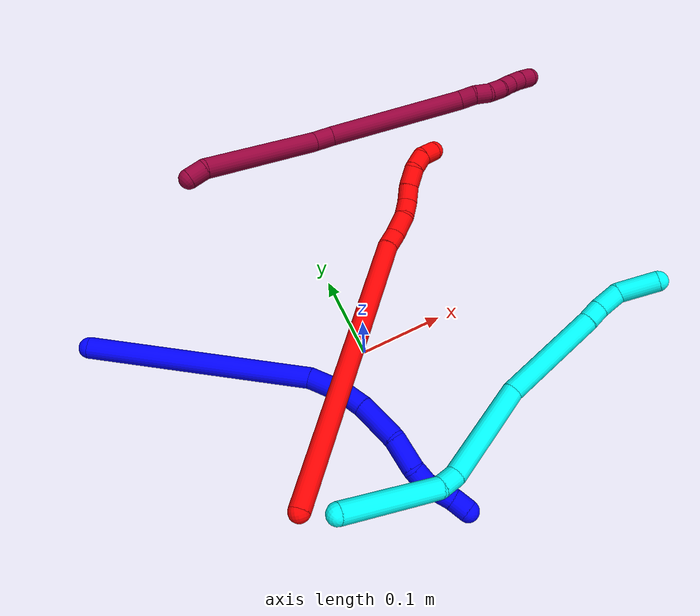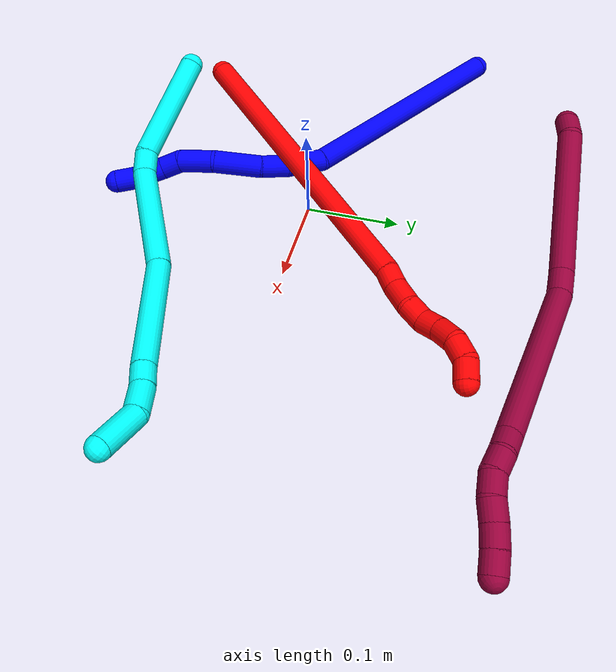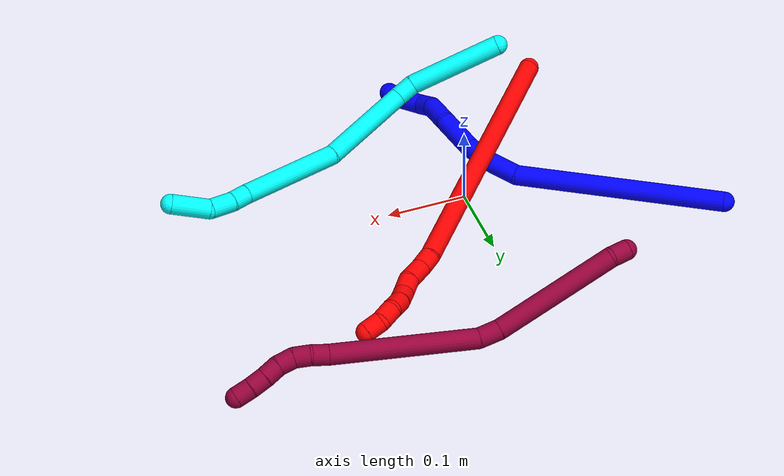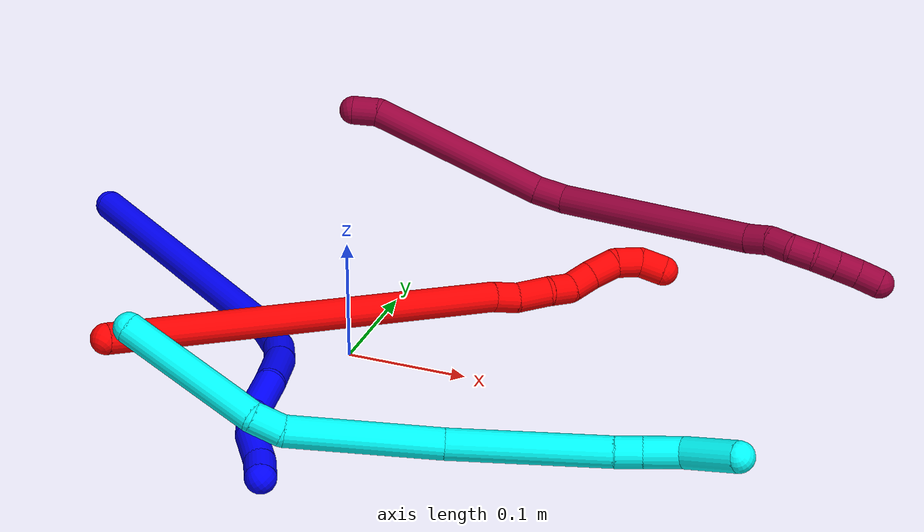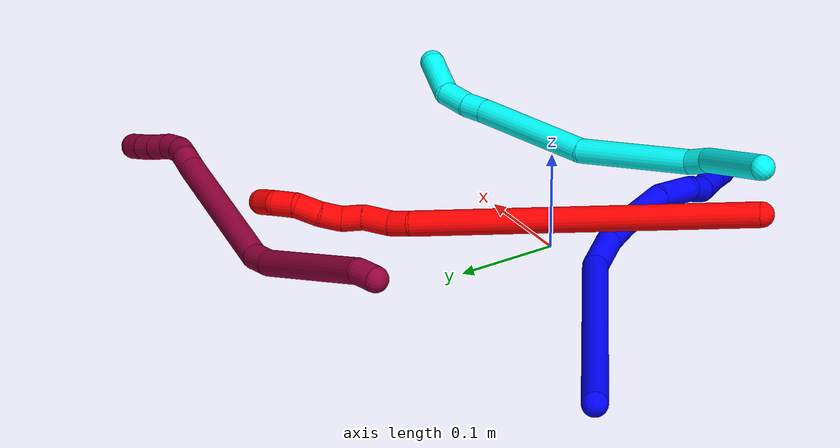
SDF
<sdf version="1.7">
 <world name="default">
  <model name="1">
   <static>0</static>
   <link name="1">
    <collision name="collision-cylinder-e_1_1_4">
     <pose>0.095829 -0.07199 -0.051151 2.18855 0.8262 1.40799</pose>
     <geometry><cylinder><radius>0.0125</radius><length>0.26063</length></cylinder></geometry>
     <surface>
      <friction><ode><mu>1.16</mu><mu2>1.16</mu2><slip1>0</slip1><slip2>0</slip2></ode></friction>
      <contact><ode><kp>1e+06</kp><kd>1</kd><max_vel>0</max_vel><min_depth>0.001</min_depth></ode></contact>
     </surface>
    </collision>
    <visual name="visual-cylinder-e_1_1_4">
     <pose>0.095829 -0.07199 -0.051151 2.18855 0.8262 1.40799</pose>
     <geometry><cylinder><radius>0.0125</radius><length>0.26063</length></cylinder></geometry>
     <material><ambient>0 0 1 1</ambient></material>
    </visual>
    <collision name="collision-cylinder-e_2_4_5">
     <pose>0.205826 -0.159693 -0.104485 1.70891 0.72897 0.826054</pose>
     <geometry><cylinder><radius>0.0125</radius><length>0.042541</length></cylinder></geometry>
     <surface>
      <friction><ode><mu>1.16</mu><mu2>1.16</mu2><slip1>0</slip1><slip2>0</slip2></ode></friction>
      <contact><ode><kp>1e+06</kp><kd>1</kd><max_vel>0</max_vel><min_depth>0.001</min_depth></ode></contact>
     </surface>
    </collision>
    <visual name="visual-cylinder-e_2_4_5">
     <pose>0.205826 -0.159693 -0.104485 1.70891 0.72897 0.826054</pose>
     <geometry><cylinder><radius>0.0125</radius><length>0.042541</length></cylinder></geometry>
     <material><ambient>0 0 1 1</ambient></material>
    </visual>
    <collision name="collision-cylinder-e_3_5_6">
     <pose>0.228117 -0.188164 -0.106372 1.54743 0.566825 0.554399</pose>
     <geometry><cylinder><radius>0.0125</radius><length>0.030253</length></cylinder></geometry>
     <surface>
      <friction><ode><mu>1.16</mu><mu2>1.16</mu2><slip1>0</slip1><slip2>0</slip2></ode></friction>
      <contact><ode><kp>1e+06</kp><kd>1</kd><max_vel>0</max_vel><min_depth>0.001</min_depth></ode></contact>
     </surface>
    </collision>
    <visual name="visual-cylinder-e_3_5_6">
     <pose>0.228117 -0.188164 -0.106372 1.54743 0.566825 0.554399</pose>
     <geometry><cylinder><radius>0.0125</radius><length>0.030253</length></cylinder></geometry>
     <material><ambient>0 0 1 1</ambient></material>
    </visual>
    <collision name="collision-cylinder-e_4_6_7">
     <pose>0.247284 -0.224417 -0.102277 1.41062 0.434493 0.371528</pose>
     <geometry><cylinder><radius>0.0125</radius><length>0.052475</length></cylinder></geometry>
     <surface>
      <friction><ode><mu>1.16</mu><mu2>1.16</mu2><slip1>0</slip1><slip2>0</slip2></ode></friction>
      <contact><ode><kp>1e+06</kp><kd>1</kd><max_vel>0</max_vel><min_depth>0.001</min_depth></ode></contact>
     </surface>
    </collision>
    <visual name="visual-cylinder-e_4_6_7">
     <pose>0.247284 -0.224417 -0.102277 1.41062 0.434493 0.371528</pose>
     <geometry><cylinder><radius>0.0125</radius><length>0.052475</length></cylinder></geometry>
     <material><ambient>0 0 1 1</ambient></material>
    </visual>
    <collision name="collision-cylinder-e_5_7_8">
     <pose>0.260987 -0.266748 -0.098061 1.54847 0.140158 0.137073</pose>
     <geometry><cylinder><radius>0.0125</radius><length>0.038056</length></cylinder></geometry>
     <surface>
      <friction><ode><mu>1.16</mu><mu2>1.16</mu2><slip1>0</slip1><slip2>0</slip2></ode></friction>
      <contact><ode><kp>1e+06</kp><kd>1</kd><max_vel>0</max_vel><min_depth>0.001</min_depth></ode></contact>
     </surface>
    </collision>
    <visual name="visual-cylinder-e_5_7_8">
     <pose>0.260987 -0.266748 -0.098061 1.54847 0.140158 0.137073</pose>
     <geometry><cylinder><radius>0.0125</radius><length>0.038056</length></cylinder></geometry>
     <material><ambient>0 0 1 1</ambient></material>
    </visual>
    <collision name="collision-cylinder-e_6_8_9">
     <pose>0.264899 -0.296117 -0.101452 1.91801 0.111552 0.158828</pose>
     <geometry><cylinder><radius>0.0125</radius><length>0.022541</length></cylinder></geometry>
     <surface>
      <friction><ode><mu>1.16</mu><mu2>1.16</mu2><slip1>0</slip1><slip2>0</slip2></ode></friction>
      <contact><ode><kp>1e+06</kp><kd>1</kd><max_vel>0</max_vel><min_depth>0.001</min_depth></ode></contact>
     </surface>
    </collision>
    <visual name="visual-cylinder-e_6_8_9">
     <pose>0.264899 -0.296117 -0.101452 1.91801 0.111552 0.158828</pose>
     <geometry><cylinder><radius>0.0125</radius><length>0.022541</length></cylinder></geometry>
     <material><ambient>0 0 1 1</ambient></material>
    </visual>
    <collision name="collision-cylinder-e_7_9_10">
     <pose>0.27428 -0.319984 -0.110182 1.92418 0.519395 0.7284</pose>
     <geometry><cylinder><radius>0.0125</radius><length>0.032744</length></cylinder></geometry>
     <surface>
      <friction><ode><mu>1.16</mu><mu2>1.16</mu2><slip1>0</slip1><slip2>0</slip2></ode></friction>
      <contact><ode><kp>1e+06</kp><kd>1</kd><max_vel>0</max_vel><min_depth>0.001</min_depth></ode></contact>
     </surface>
    </collision>
    <visual name="visual-cylinder-e_7_9_10">
     <pose>0.27428 -0.319984 -0.110182 1.92418 0.519395 0.7284</pose>
     <geometry><cylinder><radius>0.0125</radius><length>0.032744</length></cylinder></geometry>
     <material><ambient>0 0 1 1</ambient></material>
    </visual>
    <collision name="collision-cylinder-e_8_10_2">
     <pose>0.286867 -0.342562 -0.116648 1.73674 0.44416 0.521395</pose>
     <geometry><cylinder><radius>0.0125</radius><length>0.020759</length></cylinder></geometry>
     <surface>
      <friction><ode><mu>1.16</mu><mu2>1.16</mu2><slip1>0</slip1><slip2>0</slip2></ode></friction>
      <contact><ode><kp>1e+06</kp><kd>1</kd><max_vel>0</max_vel><min_depth>0.001</min_depth></ode></contact>
     </surface>
    </collision>
    <visual name="visual-cylinder-e_8_10_2">
     <pose>0.286867 -0.342562 -0.116648 1.73674 0.44416 0.521395</pose>
     <geometry><cylinder><radius>0.0125</radius><length>0.020759</length></cylinder></geometry>
     <material><ambient>0 0 1 1</ambient></material>
    </visual>
    <collision name="collision-sphere-2">
     <pose>0.291327 -0.351806 -0.118197 0 -0 0</pose>
     <geometry><sphere><radius>0.0125</radius></sphere></geometry>
     <surface>
      <friction><ode><mu>1.16</mu><mu2>1.16</mu2><slip1>0</slip1><slip2>0</slip2></ode></friction>
      <contact><ode><kp>1e+06</kp><kd>1</kd><max_vel>0</max_vel><min_depth>0.001</min_depth></ode></contact>
     </surface>
    </collision>
    <visual name="visual-sphere-2">
     <pose>0.291327 -0.351806 -0.118197 0 -0 0</pose>
     <geometry><sphere><radius>0.0125</radius></sphere></geometry>
     <material><ambient>0 0 1 1</ambient></material>
    </visual>
    <collision name="collision-sphere-10">
     <pose>0.282407 -0.333319 -0.1151 0 -0 0</pose>
     <geometry><sphere><radius>0.0125</radius></sphere></geometry>
     <surface>
      <friction><ode><mu>1.16</mu><mu2>1.16</mu2><slip1>0</slip1><slip2>0</slip2></ode></friction>
      <contact><ode><kp>1e+06</kp><kd>1</kd><max_vel>0</max_vel><min_depth>0.001</min_depth></ode></contact>
     </surface>
    </collision>
    <visual name="visual-sphere-10">
     <pose>0.282407 -0.333319 -0.1151 0 -0 0</pose>
     <geometry><sphere><radius>0.0125</radius></sphere></geometry>
     <material><ambient>0 0 1 1</ambient></material>
    </visual>
    <collision name="collision-sphere-9">
     <pose>0.266154 -0.306649 -0.105263 0 -0 0</pose>
     <geometry><sphere><radius>0.0125</radius></sphere></geometry>
     <surface>
      <friction><ode><mu>1.16</mu><mu2>1.16</mu2><slip1>0</slip1><slip2>0</slip2></ode></friction>
      <contact><ode><kp>1e+06</kp><kd>1</kd><max_vel>0</max_vel><min_depth>0.001</min_depth></ode></contact>
     </surface>
    </collision>
    <visual name="visual-sphere-9">
     <pose>0.266154 -0.306649 -0.105263 0 -0 0</pose>
     <geometry><sphere><radius>0.0125</radius></sphere></geometry>
     <material><ambient>0 0 1 1</ambient></material>
    </visual>
    <collision name="collision-sphere-4">
     <pose>0.191658 -0.143979 -0.102301 0 -0 0</pose>
     <geometry><sphere><radius>0.0125</radius></sphere></geometry>
     <surface>
      <friction><ode><mu>1.16</mu><mu2>1.16</mu2><slip1>0</slip1><slip2>0</slip2></ode></friction>
      <contact><ode><kp>1e+06</kp><kd>1</kd><max_vel>0</max_vel><min_depth>0.001</min_depth></ode></contact>
     </surface>
    </collision>
    <visual name="visual-sphere-4">
     <pose>0.191658 -0.143979 -0.102301 0 -0 0</pose>
     <geometry><sphere><radius>0.0125</radius></sphere></geometry>
     <material><ambient>0 0 1 1</ambient></material>
    </visual>
    <collision name="collision-sphere-1">
     <geometry><sphere><radius>0.0125</radius></sphere></geometry>
     <surface>
      <friction><ode><mu>1.16</mu><mu2>1.16</mu2><slip1>0</slip1><slip2>0</slip2></ode></friction>
      <contact><ode><kp>1e+06</kp><kd>1</kd><max_vel>0</max_vel><min_depth>0.001</min_depth></ode></contact>
     </surface>
    </collision>
    <visual name="visual-sphere-1">
     <geometry><sphere><radius>0.0125</radius></sphere></geometry>
     <material><ambient>0 0 1 1</ambient></material>
    </visual>
    <collision name="collision-sphere-8">
     <pose>0.263645 -0.285585 -0.09764 0 -0 0</pose>
     <geometry><sphere><radius>0.0125</radius></sphere></geometry>
     <surface>
      <friction><ode><mu>1.16</mu><mu2>1.16</mu2><slip1>0</slip1><slip2>0</slip2></ode></friction>
      <contact><ode><kp>1e+06</kp><kd>1</kd><max_vel>0</max_vel><min_depth>0.001</min_depth></ode></contact>
     </surface>
    </collision>
    <visual name="visual-sphere-8">
     <pose>0.263645 -0.285585 -0.09764 0 -0 0</pose>
     <geometry><sphere><radius>0.0125</radius></sphere></geometry>
     <material><ambient>0 0 1 1</ambient></material>
    </visual>
    <collision name="collision-sphere-5">
     <pose>0.219994 -0.175407 -0.10667 0 -0 0</pose>
     <geometry><sphere><radius>0.0125</radius></sphere></geometry>
     <surface>
      <friction><ode><mu>1.16</mu><mu2>1.16</mu2><slip1>0</slip1><slip2>0</slip2></ode></friction>
      <contact><ode><kp>1e+06</kp><kd>1</kd><max_vel>0</max_vel><min_depth>0.001</min_depth></ode></contact>
     </surface>
    </collision>
    <visual name="visual-sphere-5">
     <pose>0.219994 -0.175407 -0.10667 0 -0 0</pose>
     <geometry><sphere><radius>0.0125</radius></sphere></geometry>
     <material><ambient>0 0 1 1</ambient></material>
    </visual>
    <collision name="collision-sphere-6">
     <pose>0.236239 -0.200922 -0.106073 0 -0 0</pose>
     <geometry><sphere><radius>0.0125</radius></sphere></geometry>
     <surface>
      <friction><ode><mu>1.16</mu><mu2>1.16</mu2><slip1>0</slip1><slip2>0</slip2></ode></friction>
      <contact><ode><kp>1e+06</kp><kd>1</kd><max_vel>0</max_vel><min_depth>0.001</min_depth></ode></contact>
     </surface>
    </collision>
    <visual name="visual-sphere-6">
     <pose>0.236239 -0.200922 -0.106073 0 -0 0</pose>
     <geometry><sphere><radius>0.0125</radius></sphere></geometry>
     <material><ambient>0 0 1 1</ambient></material>
    </visual>
    <collision name="collision-sphere-7">
     <pose>0.258328 -0.247912 -0.098482 0 -0 0</pose>
     <geometry><sphere><radius>0.0125</radius></sphere></geometry>
     <surface>
      <friction><ode><mu>1.16</mu><mu2>1.16</mu2><slip1>0</slip1><slip2>0</slip2></ode></friction>
      <contact><ode><kp>1e+06</kp><kd>1</kd><max_vel>0</max_vel><min_depth>0.001</min_depth></ode></contact>
     </surface>
    </collision>
    <visual name="visual-sphere-7">
     <pose>0.258328 -0.247912 -0.098482 0 -0 0</pose>
     <geometry><sphere><radius>0.0125</radius></sphere></geometry>
     <material><ambient>0 0 1 1</ambient></material>
    </visual>
    <inertial>
     <pose>0.168898 -0.15488 -0.076819 0 -0 0</pose>
     <mass>0.5</mass>
     <inertia>
      <ixx>0.001224</ixx>
      <ixy>0</ixy>
      <ixz>0</ixz>
      <iyy>0.001728</iyy>
      <iyz>0</iyz>
      <izz>-0.000264</izz>
     </inertia>
    </inertial>
   </link>
   <pose>-0.28707 0.142126 0.018553 0.24173 -0.579222 -0.135498</pose>
  </model>
  <model name="2">
   <static>0</static>
   <link name="2">
    <collision name="collision-cylinder-e_1_1_4">
     <pose>0.078939 0.092921 0.11822 -0.666146 0.483425 -0.17017</pose>
     <geometry><cylinder><radius>0.0125</radius><length>0.339656</length></cylinder></geometry>
     <surface>
      <friction><ode><mu>1.16</mu><mu2>1.16</mu2><slip1>0</slip1><slip2>0</slip2></ode></friction>
      <contact><ode><kp>1e+06</kp><kd>1</kd><max_vel>0</max_vel><min_depth>0.001</min_depth></ode></contact>
     </surface>
    </collision>
    <visual name="visual-cylinder-e_1_1_4">
     <pose>0.078939 0.092921 0.11822 -0.666146 0.483425 -0.17017</pose>
     <geometry><cylinder><radius>0.0125</radius><length>0.339656</length></cylinder></geometry>
     <material><ambient>1 0 0 1</ambient></material>
    </visual>
    <collision name="collision-cylinder-e_2_4_5">
     <pose>0.164355 0.191728 0.242339 -0.784295 0.660799 -0.281804</pose>
     <geometry><cylinder><radius>0.0125</radius><length>0.021109</length></cylinder></geometry>
     <surface>
      <friction><ode><mu>1.16</mu><mu2>1.16</mu2><slip1>0</slip1><slip2>0</slip2></ode></friction>
      <contact><ode><kp>1e+06</kp><kd>1</kd><max_vel>0</max_vel><min_depth>0.001</min_depth></ode></contact>
     </surface>
    </collision>
    <visual name="visual-cylinder-e_2_4_5">
     <pose>0.164355 0.191728 0.242339 -0.784295 0.660799 -0.281804</pose>
     <geometry><cylinder><radius>0.0125</radius><length>0.021109</length></cylinder></geometry>
     <material><ambient>1 0 0 1</ambient></material>
    </visual>
    <collision name="collision-cylinder-e_3_5_6">
     <pose>0.179319 0.202529 0.258143 -0.460614 0.654575 -0.158867</pose>
     <geometry><cylinder><radius>0.0125</radius><length>0.027879</length></cylinder></geometry>
     <surface>
      <friction><ode><mu>1.16</mu><mu2>1.16</mu2><slip1>0</slip1><slip2>0</slip2></ode></friction>
      <contact><ode><kp>1e+06</kp><kd>1</kd><max_vel>0</max_vel><min_depth>0.001</min_depth></ode></contact>
     </surface>
    </collision>
    <visual name="visual-cylinder-e_3_5_6">
     <pose>0.179319 0.202529 0.258143 -0.460614 0.654575 -0.158867</pose>
     <geometry><cylinder><radius>0.0125</radius><length>0.027879</length></cylinder></geometry>
     <material><ambient>1 0 0 1</ambient></material>
    </visual>
    <collision name="collision-cylinder-e_4_6_7">
     <pose>0.192032 0.213576 0.275854 -0.665861 0.402486 -0.140857</pose>
     <geometry><cylinder><radius>0.0125</radius><length>0.021576</length></cylinder></geometry>
     <surface>
      <friction><ode><mu>1.16</mu><mu2>1.16</mu2><slip1>0</slip1><slip2>0</slip2></ode></friction>
      <contact><ode><kp>1e+06</kp><kd>1</kd><max_vel>0</max_vel><min_depth>0.001</min_depth></ode></contact>
     </surface>
    </collision>
    <visual name="visual-cylinder-e_4_6_7">
     <pose>0.192032 0.213576 0.275854 -0.665861 0.402486 -0.140857</pose>
     <geometry><cylinder><radius>0.0125</radius><length>0.021576</length></cylinder></geometry>
     <material><ambient>1 0 0 1</ambient></material>
    </visual>
    <collision name="collision-cylinder-e_5_7_8">
     <pose>0.199856 0.222271 0.293681 -0.250443 0.334862 -0.042544</pose>
     <geometry><cylinder><radius>0.0125</radius><length>0.021903</length></cylinder></geometry>
     <surface>
      <friction><ode><mu>1.16</mu><mu2>1.16</mu2><slip1>0</slip1><slip2>0</slip2></ode></friction>
      <contact><ode><kp>1e+06</kp><kd>1</kd><max_vel>0</max_vel><min_depth>0.001</min_depth></ode></contact>
     </surface>
    </collision>
    <visual name="visual-cylinder-e_5_7_8">
     <pose>0.199856 0.222271 0.293681 -0.250443 0.334862 -0.042544</pose>
     <geometry><cylinder><radius>0.0125</radius><length>0.021903</length></cylinder></geometry>
     <material><ambient>1 0 0 1</ambient></material>
    </visual>
    <collision name="collision-cylinder-e_6_8_9">
     <pose>0.209575 0.226808 0.313957 -0.190143 0.530007 -0.051747</pose>
     <geometry><cylinder><radius>0.0125</radius><length>0.02421</length></cylinder></geometry>
     <surface>
      <friction><ode><mu>1.16</mu><mu2>1.16</mu2><slip1>0</slip1><slip2>0</slip2></ode></friction>
      <contact><ode><kp>1e+06</kp><kd>1</kd><max_vel>0</max_vel><min_depth>0.001</min_depth></ode></contact>
     </surface>
    </collision>
    <visual name="visual-cylinder-e_6_8_9">
     <pose>0.209575 0.226808 0.313957 -0.190143 0.530007 -0.051747</pose>
     <geometry><cylinder><radius>0.0125</radius><length>0.02421</length></cylinder></geometry>
     <material><ambient>1 0 0 1</ambient></material>
    </visual>
    <collision name="collision-cylinder-e_7_9_10">
     <pose>0.222758 0.234042 0.331027 -0.657401 0.687169 -0.242854</pose>
     <geometry><cylinder><radius>0.0125</radius><length>0.022269</length></cylinder></geometry>
     <surface>
      <friction><ode><mu>1.16</mu><mu2>1.16</mu2><slip1>0</slip1><slip2>0</slip2></ode></friction>
      <contact><ode><kp>1e+06</kp><kd>1</kd><max_vel>0</max_vel><min_depth>0.001</min_depth></ode></contact>
     </surface>
    </collision>
    <visual name="visual-cylinder-e_7_9_10">
     <pose>0.222758 0.234042 0.331027 -0.657401 0.687169 -0.242854</pose>
     <geometry><cylinder><radius>0.0125</radius><length>0.022269</length></cylinder></geometry>
     <material><ambient>1 0 0 1</ambient></material>
    </visual>
    <collision name="collision-cylinder-e_8_10_2">
     <pose>0.238715 0.244888 0.339879 -1.22086 0.981373 -0.715355</pose>
     <geometry><cylinder><radius>0.0125</radius><length>0.021398</length></cylinder></geometry>
     <surface>
      <friction><ode><mu>1.16</mu><mu2>1.16</mu2><slip1>0</slip1><slip2>0</slip2></ode></friction>
      <contact><ode><kp>1e+06</kp><kd>1</kd><max_vel>0</max_vel><min_depth>0.001</min_depth></ode></contact>
     </surface>
    </collision>
    <visual name="visual-cylinder-e_8_10_2">
     <pose>0.238715 0.244888 0.339879 -1.22086 0.981373 -0.715355</pose>
     <geometry><cylinder><radius>0.0125</radius><length>0.021398</length></cylinder></geometry>
     <material><ambient>1 0 0 1</ambient></material>
    </visual>
    <collision name="collision-sphere-2">
     <pose>0.247608 0.250475 0.341918 0 -0 0</pose>
     <geometry><sphere><radius>0.0125</radius></sphere></geometry>
     <surface>
      <friction><ode><mu>1.16</mu><mu2>1.16</mu2><slip1>0</slip1><slip2>0</slip2></ode></friction>
      <contact><ode><kp>1e+06</kp><kd>1</kd><max_vel>0</max_vel><min_depth>0.001</min_depth></ode></contact>
     </surface>
    </collision>
    <visual name="visual-sphere-2">
     <pose>0.247608 0.250475 0.341918 0 -0 0</pose>
     <geometry><sphere><radius>0.0125</radius></sphere></geometry>
     <material><ambient>1 0 0 1</ambient></material>
    </visual>
    <collision name="collision-sphere-10">
     <pose>0.229821 0.239301 0.33784 0 -0 0</pose>
     <geometry><sphere><radius>0.0125</radius></sphere></geometry>
     <surface>
      <friction><ode><mu>1.16</mu><mu2>1.16</mu2><slip1>0</slip1><slip2>0</slip2></ode></friction>
      <contact><ode><kp>1e+06</kp><kd>1</kd><max_vel>0</max_vel><min_depth>0.001</min_depth></ode></contact>
     </surface>
    </collision>
    <visual name="visual-sphere-10">
     <pose>0.229821 0.239301 0.33784 0 -0 0</pose>
     <geometry><sphere><radius>0.0125</radius></sphere></geometry>
     <material><ambient>1 0 0 1</ambient></material>
    </visual>
    <collision name="collision-sphere-9">
     <pose>0.215695 0.228782 0.324213 0 -0 0</pose>
     <geometry><sphere><radius>0.0125</radius></sphere></geometry>
     <surface>
      <friction><ode><mu>1.16</mu><mu2>1.16</mu2><slip1>0</slip1><slip2>0</slip2></ode></friction>
      <contact><ode><kp>1e+06</kp><kd>1</kd><max_vel>0</max_vel><min_depth>0.001</min_depth></ode></contact>
     </surface>
    </collision>
    <visual name="visual-sphere-9">
     <pose>0.215695 0.228782 0.324213 0 -0 0</pose>
     <geometry><sphere><radius>0.0125</radius></sphere></geometry>
     <material><ambient>1 0 0 1</ambient></material>
    </visual>
    <collision name="collision-sphere-4">
     <pose>0.157877 0.185842 0.23644 0 -0 0</pose>
     <geometry><sphere><radius>0.0125</radius></sphere></geometry>
     <surface>
      <friction><ode><mu>1.16</mu><mu2>1.16</mu2><slip1>0</slip1><slip2>0</slip2></ode></friction>
      <contact><ode><kp>1e+06</kp><kd>1</kd><max_vel>0</max_vel><min_depth>0.001</min_depth></ode></contact>
     </surface>
    </collision>
    <visual name="visual-sphere-4">
     <pose>0.157877 0.185842 0.23644 0 -0 0</pose>
     <geometry><sphere><radius>0.0125</radius></sphere></geometry>
     <material><ambient>1 0 0 1</ambient></material>
    </visual>
    <collision name="collision-sphere-1">
     <geometry><sphere><radius>0.0125</radius></sphere></geometry>
     <surface>
      <friction><ode><mu>1.16</mu><mu2>1.16</mu2><slip1>0</slip1><slip2>0</slip2></ode></friction>
      <contact><ode><kp>1e+06</kp><kd>1</kd><max_vel>0</max_vel><min_depth>0.001</min_depth></ode></contact>
     </surface>
    </collision>
    <visual name="visual-sphere-1">
     <geometry><sphere><radius>0.0125</radius></sphere></geometry>
     <material><ambient>1 0 0 1</ambient></material>
    </visual>
    <collision name="collision-sphere-8">
     <pose>0.203456 0.224834 0.303702 0 -0 0</pose>
     <geometry><sphere><radius>0.0125</radius></sphere></geometry>
     <surface>
      <friction><ode><mu>1.16</mu><mu2>1.16</mu2><slip1>0</slip1><slip2>0</slip2></ode></friction>
      <contact><ode><kp>1e+06</kp><kd>1</kd><max_vel>0</max_vel><min_depth>0.001</min_depth></ode></contact>
     </surface>
    </collision>
    <visual name="visual-sphere-8">
     <pose>0.203456 0.224834 0.303702 0 -0 0</pose>
     <geometry><sphere><radius>0.0125</radius></sphere></geometry>
     <material><ambient>1 0 0 1</ambient></material>
    </visual>
    <collision name="collision-sphere-5">
     <pose>0.170833 0.197613 0.248237 0 -0 0</pose>
     <geometry><sphere><radius>0.0125</radius></sphere></geometry>
     <surface>
      <friction><ode><mu>1.16</mu><mu2>1.16</mu2><slip1>0</slip1><slip2>0</slip2></ode></friction>
      <contact><ode><kp>1e+06</kp><kd>1</kd><max_vel>0</max_vel><min_depth>0.001</min_depth></ode></contact>
     </surface>
    </collision>
    <visual name="visual-sphere-5">
     <pose>0.170833 0.197613 0.248237 0 -0 0</pose>
     <geometry><sphere><radius>0.0125</radius></sphere></geometry>
     <material><ambient>1 0 0 1</ambient></material>
    </visual>
    <collision name="collision-sphere-6">
     <pose>0.187806 0.207444 0.268049 0 -0 0</pose>
     <geometry><sphere><radius>0.0125</radius></sphere></geometry>
     <surface>
      <friction><ode><mu>1.16</mu><mu2>1.16</mu2><slip1>0</slip1><slip2>0</slip2></ode></friction>
      <contact><ode><kp>1e+06</kp><kd>1</kd><max_vel>0</max_vel><min_depth>0.001</min_depth></ode></contact>
     </surface>
    </collision>
    <visual name="visual-sphere-6">
     <pose>0.187806 0.207444 0.268049 0 -0 0</pose>
     <geometry><sphere><radius>0.0125</radius></sphere></geometry>
     <material><ambient>1 0 0 1</ambient></material>
    </visual>
    <collision name="collision-sphere-7">
     <pose>0.196257 0.219707 0.28366 0 -0 0</pose>
     <geometry><sphere><radius>0.0125</radius></sphere></geometry>
     <surface>
      <friction><ode><mu>1.16</mu><mu2>1.16</mu2><slip1>0</slip1><slip2>0</slip2></ode></friction>
      <contact><ode><kp>1e+06</kp><kd>1</kd><max_vel>0</max_vel><min_depth>0.001</min_depth></ode></contact>
     </surface>
    </collision>
    <visual name="visual-sphere-7">
     <pose>0.196257 0.219707 0.28366 0 -0 0</pose>
     <geometry><sphere><radius>0.0125</radius></sphere></geometry>
     <material><ambient>1 0 0 1</ambient></material>
    </visual>
    <inertial>
     <pose>0.117887 0.133348 0.174192 0 -0 0</pose>
     <mass>0.5</mass>
     <inertia>
      <ixx>0.002397</ixx>
      <ixy>0</ixy>
      <ixz>0</ixz>
      <iyy>0.002238</iyy>
      <iyz>0</iyz>
      <izz>-0.003304</izz>
     </inertia>
    </inertial>
   </link>
   <pose>-0.142946 -0.143036 0.059851 -1.08836 -0.0739 -0.23954</pose>
  </model>
  <model name="3">
   <static>0</static>
   <link name="3">
    <collision name="collision-cylinder-e_1_1_4">
     <pose>0.054699 -0.021203 -0.011577 2.07056 1.15492 1.66422</pose>
     <geometry><cylinder><radius>0.0125</radius><length>0.119592</length></cylinder></geometry>
     <surface>
      <friction><ode><mu>1.16</mu><mu2>1.16</mu2><slip1>0</slip1><slip2>0</slip2></ode></friction>
      <contact><ode><kp>1e+06</kp><kd>1</kd><max_vel>0</max_vel><min_depth>0.001</min_depth></ode></contact>
     </surface>
    </collision>
    <visual name="visual-cylinder-e_1_1_4">
     <pose>0.054699 -0.021203 -0.011577 2.07056 1.15492 1.66422</pose>
     <geometry><cylinder><radius>0.0125</radius><length>0.119592</length></cylinder></geometry>
     <material><ambient>0.003922 1 0.996078 1</ambient></material>
    </visual>
    <collision name="collision-cylinder-e_2_4_5">
     <pose>0.120354 -0.04411 -0.029008 2.85836 1.06292 2.66574</pose>
     <geometry><cylinder><radius>0.0125</radius><length>0.025077</length></cylinder></geometry>
     <surface>
      <friction><ode><mu>1.16</mu><mu2>1.16</mu2><slip1>0</slip1><slip2>0</slip2></ode></friction>
      <contact><ode><kp>1e+06</kp><kd>1</kd><max_vel>0</max_vel><min_depth>0.001</min_depth></ode></contact>
     </surface>
    </collision>
    <visual name="visual-cylinder-e_2_4_5">
     <pose>0.120354 -0.04411 -0.029008 2.85836 1.06292 2.66574</pose>
     <geometry><cylinder><radius>0.0125</radius><length>0.025077</length></cylinder></geometry>
     <material><ambient>0.003922 1 0.996078 1</ambient></material>
    </visual>
    <collision name="collision-cylinder-e_3_5_6">
     <pose>0.184173 -0.031986 -0.064291 -2.70233 1.01938 -2.38165</pose>
     <geometry><cylinder><radius>0.0125</radius><length>0.124125</length></cylinder></geometry>
     <surface>
      <friction><ode><mu>1.16</mu><mu2>1.16</mu2><slip1>0</slip1><slip2>0</slip2></ode></friction>
      <contact><ode><kp>1e+06</kp><kd>1</kd><max_vel>0</max_vel><min_depth>0.001</min_depth></ode></contact>
     </surface>
    </collision>
    <visual name="visual-cylinder-e_3_5_6">
     <pose>0.184173 -0.031986 -0.064291 -2.70233 1.01938 -2.38165</pose>
     <geometry><cylinder><radius>0.0125</radius><length>0.124125</length></cylinder></geometry>
     <material><ambient>0.003922 1 0.996078 1</ambient></material>
    </visual>
    <collision name="collision-cylinder-e_4_6_7">
     <pose>0.298265 -0.004604 -0.108514 -2.39995 1.2541 -2.15663</pose>
     <geometry><cylinder><radius>0.0125</radius><length>0.128865</length></cylinder></geometry>
     <surface>
      <friction><ode><mu>1.16</mu><mu2>1.16</mu2><slip1>0</slip1><slip2>0</slip2></ode></friction>
      <contact><ode><kp>1e+06</kp><kd>1</kd><max_vel>0</max_vel><min_depth>0.001</min_depth></ode></contact>
     </surface>
    </collision>
    <visual name="visual-cylinder-e_4_6_7">
     <pose>0.298265 -0.004604 -0.108514 -2.39995 1.2541 -2.15663</pose>
     <geometry><cylinder><radius>0.0125</radius><length>0.128865</length></cylinder></geometry>
     <material><ambient>0.003922 1 0.996078 1</ambient></material>
    </visual>
    <collision name="collision-cylinder-e_5_7_8">
     <pose>0.369751 0.011845 -0.126439 -2.39526 1.17692 -2.08046</pose>
     <geometry><cylinder><radius>0.0125</radius><length>0.022215</length></cylinder></geometry>
     <surface>
      <friction><ode><mu>1.16</mu><mu2>1.16</mu2><slip1>0</slip1><slip2>0</slip2></ode></friction>
      <contact><ode><kp>1e+06</kp><kd>1</kd><max_vel>0</max_vel><min_depth>0.001</min_depth></ode></contact>
     </surface>
    </collision>
    <visual name="visual-cylinder-e_5_7_8">
     <pose>0.369751 0.011845 -0.126439 -2.39526 1.17692 -2.08046</pose>
     <geometry><cylinder><radius>0.0125</radius><length>0.022215</length></cylinder></geometry>
     <material><ambient>0.003922 1 0.996078 1</ambient></material>
    </visual>
    <collision name="collision-cylinder-e_6_8_9">
     <pose>0.394953 0.018318 -0.131592 -2.08526 1.30234 -1.83472</pose>
     <geometry><cylinder><radius>0.0125</radius><length>0.031001</length></cylinder></geometry>
     <surface>
      <friction><ode><mu>1.16</mu><mu2>1.16</mu2><slip1>0</slip1><slip2>0</slip2></ode></friction>
      <contact><ode><kp>1e+06</kp><kd>1</kd><max_vel>0</max_vel><min_depth>0.001</min_depth></ode></contact>
     </surface>
    </collision>
    <visual name="visual-cylinder-e_6_8_9">
     <pose>0.394953 0.018318 -0.131592 -2.08526 1.30234 -1.83472</pose>
     <geometry><cylinder><radius>0.0125</radius><length>0.031001</length></cylinder></geometry>
     <material><ambient>0.003922 1 0.996078 1</ambient></material>
    </visual>
    <collision name="collision-cylinder-e_7_9_2">
     <pose>0.433162 0.023027 -0.125813 -0.143835 1.24408 -0.103216</pose>
     <geometry><cylinder><radius>0.0125</radius><length>0.049126</length></cylinder></geometry>
     <surface>
      <friction><ode><mu>1.16</mu><mu2>1.16</mu2><slip1>0</slip1><slip2>0</slip2></ode></friction>
      <contact><ode><kp>1e+06</kp><kd>1</kd><max_vel>0</max_vel><min_depth>0.001</min_depth></ode></contact>
     </surface>
    </collision>
    <visual name="visual-cylinder-e_7_9_2">
     <pose>0.433162 0.023027 -0.125813 -0.143835 1.24408 -0.103216</pose>
     <geometry><cylinder><radius>0.0125</radius><length>0.049126</length></cylinder></geometry>
     <material><ambient>0.003922 1 0.996078 1</ambient></material>
    </visual>
    <collision name="collision-sphere-2">
     <pose>0.456425 0.024157 -0.118012 0 -0 0</pose>
     <geometry><sphere><radius>0.0125</radius></sphere></geometry>
     <surface>
      <friction><ode><mu>1.16</mu><mu2>1.16</mu2><slip1>0</slip1><slip2>0</slip2></ode></friction>
      <contact><ode><kp>1e+06</kp><kd>1</kd><max_vel>0</max_vel><min_depth>0.001</min_depth></ode></contact>
     </surface>
    </collision>
    <visual name="visual-sphere-2">
     <pose>0.456425 0.024157 -0.118012 0 -0 0</pose>
     <geometry><sphere><radius>0.0125</radius></sphere></geometry>
     <material><ambient>0.003922 1 0.996078 1</ambient></material>
    </visual>
    <collision name="collision-sphere-9">
     <pose>0.409898 0.021897 -0.133615 0 -0 0</pose>
     <geometry><sphere><radius>0.0125</radius></sphere></geometry>
     <surface>
      <friction><ode><mu>1.16</mu><mu2>1.16</mu2><slip1>0</slip1><slip2>0</slip2></ode></friction>
      <contact><ode><kp>1e+06</kp><kd>1</kd><max_vel>0</max_vel><min_depth>0.001</min_depth></ode></contact>
     </surface>
    </collision>
    <visual name="visual-sphere-9">
     <pose>0.409898 0.021897 -0.133615 0 -0 0</pose>
     <geometry><sphere><radius>0.0125</radius></sphere></geometry>
     <material><ambient>0.003922 1 0.996078 1</ambient></material>
    </visual>
    <collision name="collision-sphere-4">
     <pose>0.109398 -0.042405 -0.023153 0 -0 0</pose>
     <geometry><sphere><radius>0.0125</radius></sphere></geometry>
     <surface>
      <friction><ode><mu>1.16</mu><mu2>1.16</mu2><slip1>0</slip1><slip2>0</slip2></ode></friction>
      <contact><ode><kp>1e+06</kp><kd>1</kd><max_vel>0</max_vel><min_depth>0.001</min_depth></ode></contact>
     </surface>
    </collision>
    <visual name="visual-sphere-4">
     <pose>0.109398 -0.042405 -0.023153 0 -0 0</pose>
     <geometry><sphere><radius>0.0125</radius></sphere></geometry>
     <material><ambient>0.003922 1 0.996078 1</ambient></material>
    </visual>
    <collision name="collision-sphere-1">
     <geometry><sphere><radius>0.0125</radius></sphere></geometry>
     <surface>
      <friction><ode><mu>1.16</mu><mu2>1.16</mu2><slip1>0</slip1><slip2>0</slip2></ode></friction>
      <contact><ode><kp>1e+06</kp><kd>1</kd><max_vel>0</max_vel><min_depth>0.001</min_depth></ode></contact>
     </surface>
    </collision>
    <visual name="visual-sphere-1">
     <geometry><sphere><radius>0.0125</radius></sphere></geometry>
     <material><ambient>0.003922 1 0.996078 1</ambient></material>
    </visual>
    <collision name="collision-sphere-8">
     <pose>0.380008 0.014739 -0.129569 0 -0 0</pose>
     <geometry><sphere><radius>0.0125</radius></sphere></geometry>
     <surface>
      <friction><ode><mu>1.16</mu><mu2>1.16</mu2><slip1>0</slip1><slip2>0</slip2></ode></friction>
      <contact><ode><kp>1e+06</kp><kd>1</kd><max_vel>0</max_vel><min_depth>0.001</min_depth></ode></contact>
     </surface>
    </collision>
    <visual name="visual-sphere-8">
     <pose>0.380008 0.014739 -0.129569 0 -0 0</pose>
     <geometry><sphere><radius>0.0125</radius></sphere></geometry>
     <material><ambient>0.003922 1 0.996078 1</ambient></material>
    </visual>
    <collision name="collision-sphere-5">
     <pose>0.13131 -0.045814 -0.034863 0 -0 0</pose>
     <geometry><sphere><radius>0.0125</radius></sphere></geometry>
     <surface>
      <friction><ode><mu>1.16</mu><mu2>1.16</mu2><slip1>0</slip1><slip2>0</slip2></ode></friction>
      <contact><ode><kp>1e+06</kp><kd>1</kd><max_vel>0</max_vel><min_depth>0.001</min_depth></ode></contact>
     </surface>
    </collision>
    <visual name="visual-sphere-5">
     <pose>0.13131 -0.045814 -0.034863 0 -0 0</pose>
     <geometry><sphere><radius>0.0125</radius></sphere></geometry>
     <material><ambient>0.003922 1 0.996078 1</ambient></material>
    </visual>
    <collision name="collision-sphere-6">
     <pose>0.237037 -0.018159 -0.093718 0 -0 0</pose>
     <geometry><sphere><radius>0.0125</radius></sphere></geometry>
     <surface>
      <friction><ode><mu>1.16</mu><mu2>1.16</mu2><slip1>0</slip1><slip2>0</slip2></ode></friction>
      <contact><ode><kp>1e+06</kp><kd>1</kd><max_vel>0</max_vel><min_depth>0.001</min_depth></ode></contact>
     </surface>
    </collision>
    <visual name="visual-sphere-6">
     <pose>0.237037 -0.018159 -0.093718 0 -0 0</pose>
     <geometry><sphere><radius>0.0125</radius></sphere></geometry>
     <material><ambient>0.003922 1 0.996078 1</ambient></material>
    </visual>
    <collision name="collision-sphere-7">
     <pose>0.359494 0.00895 -0.123309 0 -0 0</pose>
     <geometry><sphere><radius>0.0125</radius></sphere></geometry>
     <surface>
      <friction><ode><mu>1.16</mu><mu2>1.16</mu2><slip1>0</slip1><slip2>0</slip2></ode></friction>
      <contact><ode><kp>1e+06</kp><kd>1</kd><max_vel>0</max_vel><min_depth>0.001</min_depth></ode></contact>
     </surface>
    </collision>
    <visual name="visual-sphere-7">
     <pose>0.359494 0.00895 -0.123309 0 -0 0</pose>
     <geometry><sphere><radius>0.0125</radius></sphere></geometry>
     <material><ambient>0.003922 1 0.996078 1</ambient></material>
    </visual>
    <inertial>
     <pose>0.225187 -0.012486 -0.074289 0 -0 0</pose>
     <mass>0.5</mass>
     <inertia>
      <ixx>-0.000111</ixx>
      <ixy>0</ixy>
      <ixz>0</ixz>
      <iyy>0.000418</iyy>
      <iyz>0</iyz>
      <izz>-0.000501</izz>
     </inertia>
    </inertial>
   </link>
   <pose>-0.109434 -0.16703 0.088107 0.808136 -0.007237 -0.041893</pose>
  </model>
  <model name="8">
   <static>0</static>
   <link name="8">
    <collision name="collision-cylinder-e_1_1_4">
     <pose>0.001361 0.002505 0.010687 -0.230215 0.123327 -0.014277</pose>
     <geometry><cylinder><radius>0.0125</radius><length>0.022122</length></cylinder></geometry>
     <surface>
      <friction><ode><mu>1.16</mu><mu2>1.16</mu2><slip1>0</slip1><slip2>0</slip2></ode></friction>
      <contact><ode><kp>1e+06</kp><kd>1</kd><max_vel>0</max_vel><min_depth>0.001</min_depth></ode></contact>
     </surface>
    </collision>
    <visual name="visual-cylinder-e_1_1_4">
     <pose>0.001361 0.002505 0.010687 -0.230215 0.123327 -0.014277</pose>
     <geometry><cylinder><radius>0.0125</radius><length>0.022122</length></cylinder></geometry>
     <material><ambient>0.584314 0 0.227451 1</ambient></material>
    </visual>
    <collision name="collision-cylinder-e_2_4_5">
     <pose>0.019151 0.04721 0.084132 -0.591988 0.213931 -0.065465</pose>
     <geometry><cylinder><radius>0.0125</radius><length>0.154781</length></cylinder></geometry>
     <surface>
      <friction><ode><mu>1.16</mu><mu2>1.16</mu2><slip1>0</slip1><slip2>0</slip2></ode></friction>
      <contact><ode><kp>1e+06</kp><kd>1</kd><max_vel>0</max_vel><min_depth>0.001</min_depth></ode></contact>
     </surface>
    </collision>
    <visual name="visual-cylinder-e_2_4_5">
     <pose>0.019151 0.04721 0.084132 -0.591988 0.213931 -0.065465</pose>
     <geometry><cylinder><radius>0.0125</radius><length>0.154781</length></cylinder></geometry>
     <material><ambient>0.584314 0 0.227451 1</ambient></material>
    </visual>
    <collision name="collision-cylinder-e_3_5_6">
     <pose>0.039474 0.094358 0.158399 -0.40598 0.301218 -0.062451</pose>
     <geometry><cylinder><radius>0.0125</radius><length>0.026239</length></cylinder></geometry>
     <surface>
      <friction><ode><mu>1.16</mu><mu2>1.16</mu2><slip1>0</slip1><slip2>0</slip2></ode></friction>
      <contact><ode><kp>1e+06</kp><kd>1</kd><max_vel>0</max_vel><min_depth>0.001</min_depth></ode></contact>
     </surface>
    </collision>
    <visual name="visual-cylinder-e_3_5_6">
     <pose>0.039474 0.094358 0.158399 -0.40598 0.301218 -0.062451</pose>
     <geometry><cylinder><radius>0.0125</radius><length>0.026239</length></cylinder></geometry>
     <material><ambient>0.584314 0 0.227451 1</ambient></material>
    </visual>
    <collision name="collision-cylinder-e_4_6_7">
     <pose>0.086564 0.11372 0.245509 -0.188401 0.511469 -0.049395</pose>
     <geometry><cylinder><radius>0.0125</radius><length>0.176511</length></cylinder></geometry>
     <surface>
      <friction><ode><mu>1.16</mu><mu2>1.16</mu2><slip1>0</slip1><slip2>0</slip2></ode></friction>
      <contact><ode><kp>1e+06</kp><kd>1</kd><max_vel>0</max_vel><min_depth>0.001</min_depth></ode></contact>
     </surface>
    </collision>
    <visual name="visual-cylinder-e_4_6_7">
     <pose>0.086564 0.11372 0.245509 -0.188401 0.511469 -0.049395</pose>
     <geometry><cylinder><radius>0.0125</radius><length>0.176511</length></cylinder></geometry>
     <material><ambient>0.584314 0 0.227451 1</ambient></material>
    </visual>
    <collision name="collision-cylinder-e_5_7_8">
     <pose>0.134608 0.128609 0.32985 -0.054237 0.505607 -0.014014</pose>
     <geometry><cylinder><radius>0.0125</radius><length>0.020012</length></cylinder></geometry>
     <surface>
      <friction><ode><mu>1.16</mu><mu2>1.16</mu2><slip1>0</slip1><slip2>0</slip2></ode></friction>
      <contact><ode><kp>1e+06</kp><kd>1</kd><max_vel>0</max_vel><min_depth>0.001</min_depth></ode></contact>
     </surface>
    </collision>
    <visual name="visual-cylinder-e_5_7_8">
     <pose>0.134608 0.128609 0.32985 -0.054237 0.505607 -0.014014</pose>
     <geometry><cylinder><radius>0.0125</radius><length>0.020012</length></cylinder></geometry>
     <material><ambient>0.584314 0 0.227451 1</ambient></material>
    </visual>
    <collision name="collision-cylinder-e_6_8_9">
     <pose>0.144934 0.131904 0.34656 -0.340253 0.575116 -0.101527</pose>
     <geometry><cylinder><radius>0.0125</radius><length>0.020148</length></cylinder></geometry>
     <surface>
      <friction><ode><mu>1.16</mu><mu2>1.16</mu2><slip1>0</slip1><slip2>0</slip2></ode></friction>
      <contact><ode><kp>1e+06</kp><kd>1</kd><max_vel>0</max_vel><min_depth>0.001</min_depth></ode></contact>
     </surface>
    </collision>
    <visual name="visual-cylinder-e_6_8_9">
     <pose>0.144934 0.131904 0.34656 -0.340253 0.575116 -0.101527</pose>
     <geometry><cylinder><radius>0.0125</radius><length>0.020148</length></cylinder></geometry>
     <material><ambient>0.584314 0 0.227451 1</ambient></material>
    </visual>
    <collision name="collision-cylinder-e_7_9_10">
     <pose>0.152756 0.138975 0.363372 -0.447957 0.234405 -0.053631</pose>
     <geometry><cylinder><radius>0.0125</radius><length>0.020175</length></cylinder></geometry>
     <surface>
      <friction><ode><mu>1.16</mu><mu2>1.16</mu2><slip1>0</slip1><slip2>0</slip2></ode></friction>
      <contact><ode><kp>1e+06</kp><kd>1</kd><max_vel>0</max_vel><min_depth>0.001</min_depth></ode></contact>
     </surface>
    </collision>
    <visual name="visual-cylinder-e_7_9_10">
     <pose>0.152756 0.138975 0.363372 -0.447957 0.234405 -0.053631</pose>
     <geometry><cylinder><radius>0.0125</radius><length>0.020175</length></cylinder></geometry>
     <material><ambient>0.584314 0 0.227451 1</ambient></material>
    </visual>
    <collision name="collision-cylinder-e_8_10_11">
     <pose>0.155253 0.148651 0.380616 -0.573568 0.015425 -0.004549</pose>
     <geometry><cylinder><radius>0.0125</radius><length>0.020004</length></cylinder></geometry>
     <surface>
      <friction><ode><mu>1.16</mu><mu2>1.16</mu2><slip1>0</slip1><slip2>0</slip2></ode></friction>
      <contact><ode><kp>1e+06</kp><kd>1</kd><max_vel>0</max_vel><min_depth>0.001</min_depth></ode></contact>
     </surface>
    </collision>
    <visual name="visual-cylinder-e_8_10_11">
     <pose>0.155253 0.148651 0.380616 -0.573568 0.015425 -0.004549</pose>
     <geometry><cylinder><radius>0.0125</radius><length>0.020004</length></cylinder></geometry>
     <material><ambient>0.584314 0 0.227451 1</ambient></material>
    </visual>
    <collision name="collision-cylinder-e_9_11_12">
     <pose>0.156444 0.159278 0.397499 -0.549916 0.103786 -0.029303</pose>
     <geometry><cylinder><radius>0.0125</radius><length>0.020005</length></cylinder></geometry>
     <surface>
      <friction><ode><mu>1.16</mu><mu2>1.16</mu2><slip1>0</slip1><slip2>0</slip2></ode></friction>
      <contact><ode><kp>1e+06</kp><kd>1</kd><max_vel>0</max_vel><min_depth>0.001</min_depth></ode></contact>
     </surface>
    </collision>
    <visual name="visual-cylinder-e_9_11_12">
     <pose>0.156444 0.159278 0.397499 -0.549916 0.103786 -0.029303</pose>
     <geometry><cylinder><radius>0.0125</radius><length>0.020005</length></cylinder></geometry>
     <material><ambient>0.584314 0 0.227451 1</ambient></material>
    </visual>
    <collision name="collision-cylinder-e_10_12_2">
     <pose>0.159482 0.169759 0.414234 -0.569305 0.201491 -0.059139</pose>
     <geometry><cylinder><radius>0.0125</radius><length>0.020003</length></cylinder></geometry>
     <surface>
      <friction><ode><mu>1.16</mu><mu2>1.16</mu2><slip1>0</slip1><slip2>0</slip2></ode></friction>
      <contact><ode><kp>1e+06</kp><kd>1</kd><max_vel>0</max_vel><min_depth>0.001</min_depth></ode></contact>
     </surface>
    </collision>
    <visual name="visual-cylinder-e_10_12_2">
     <pose>0.159482 0.169759 0.414234 -0.569305 0.201491 -0.059139</pose>
     <geometry><cylinder><radius>0.0125</radius><length>0.020003</length></cylinder></geometry>
     <material><ambient>0.584314 0 0.227451 1</ambient></material>
    </visual>
    <collision name="collision-sphere-2">
     <pose>0.161483 0.175041 0.422487 0 -0 0</pose>
     <geometry><sphere><radius>0.0125</radius></sphere></geometry>
     <surface>
      <friction><ode><mu>1.16</mu><mu2>1.16</mu2><slip1>0</slip1><slip2>0</slip2></ode></friction>
      <contact><ode><kp>1e+06</kp><kd>1</kd><max_vel>0</max_vel><min_depth>0.001</min_depth></ode></contact>
     </surface>
    </collision>
    <visual name="visual-sphere-2">
     <pose>0.161483 0.175041 0.422487 0 -0 0</pose>
     <geometry><sphere><radius>0.0125</radius></sphere></geometry>
     <material><ambient>0.584314 0 0.227451 1</ambient></material>
    </visual>
    <collision name="collision-sphere-12">
     <pose>0.15748 0.164477 0.405981 0 -0 0</pose>
     <geometry><sphere><radius>0.0125</radius></sphere></geometry>
     <surface>
      <friction><ode><mu>1.16</mu><mu2>1.16</mu2><slip1>0</slip1><slip2>0</slip2></ode></friction>
      <contact><ode><kp>1e+06</kp><kd>1</kd><max_vel>0</max_vel><min_depth>0.001</min_depth></ode></contact>
     </surface>
    </collision>
    <visual name="visual-sphere-12">
     <pose>0.15748 0.164477 0.405981 0 -0 0</pose>
     <geometry><sphere><radius>0.0125</radius></sphere></geometry>
     <material><ambient>0.584314 0 0.227451 1</ambient></material>
    </visual>
    <collision name="collision-sphere-11">
     <pose>0.155408 0.154078 0.389017 0 -0 0</pose>
     <geometry><sphere><radius>0.0125</radius></sphere></geometry>
     <surface>
      <friction><ode><mu>1.16</mu><mu2>1.16</mu2><slip1>0</slip1><slip2>0</slip2></ode></friction>
      <contact><ode><kp>1e+06</kp><kd>1</kd><max_vel>0</max_vel><min_depth>0.001</min_depth></ode></contact>
     </surface>
    </collision>
    <visual name="visual-sphere-11">
     <pose>0.155408 0.154078 0.389017 0 -0 0</pose>
     <geometry><sphere><radius>0.0125</radius></sphere></geometry>
     <material><ambient>0.584314 0 0.227451 1</ambient></material>
    </visual>
    <collision name="collision-sphere-10">
     <pose>0.155099 0.143225 0.372216 0 -0 0</pose>
     <geometry><sphere><radius>0.0125</radius></sphere></geometry>
     <surface>
      <friction><ode><mu>1.16</mu><mu2>1.16</mu2><slip1>0</slip1><slip2>0</slip2></ode></friction>
      <contact><ode><kp>1e+06</kp><kd>1</kd><max_vel>0</max_vel><min_depth>0.001</min_depth></ode></contact>
     </surface>
    </collision>
    <visual name="visual-sphere-10">
     <pose>0.155099 0.143225 0.372216 0 -0 0</pose>
     <geometry><sphere><radius>0.0125</radius></sphere></geometry>
     <material><ambient>0.584314 0 0.227451 1</ambient></material>
    </visual>
    <collision name="collision-sphere-9">
     <pose>0.150413 0.134725 0.354529 0 -0 0</pose>
     <geometry><sphere><radius>0.0125</radius></sphere></geometry>
     <surface>
      <friction><ode><mu>1.16</mu><mu2>1.16</mu2><slip1>0</slip1><slip2>0</slip2></ode></friction>
      <contact><ode><kp>1e+06</kp><kd>1</kd><max_vel>0</max_vel><min_depth>0.001</min_depth></ode></contact>
     </surface>
    </collision>
    <visual name="visual-sphere-9">
     <pose>0.150413 0.134725 0.354529 0 -0 0</pose>
     <geometry><sphere><radius>0.0125</radius></sphere></geometry>
     <material><ambient>0.584314 0 0.227451 1</ambient></material>
    </visual>
    <collision name="collision-sphere-4">
     <pose>0.002721 0.00501 0.021375 0 -0 0</pose>
     <geometry><sphere><radius>0.0125</radius></sphere></geometry>
     <surface>
      <friction><ode><mu>1.16</mu><mu2>1.16</mu2><slip1>0</slip1><slip2>0</slip2></ode></friction>
      <contact><ode><kp>1e+06</kp><kd>1</kd><max_vel>0</max_vel><min_depth>0.001</min_depth></ode></contact>
     </surface>
    </collision>
    <visual name="visual-sphere-4">
     <pose>0.002721 0.00501 0.021375 0 -0 0</pose>
     <geometry><sphere><radius>0.0125</radius></sphere></geometry>
     <material><ambient>0.584314 0 0.227451 1</ambient></material>
    </visual>
    <collision name="collision-sphere-1">
     <geometry><sphere><radius>0.0125</radius></sphere></geometry>
     <surface>
      <friction><ode><mu>1.16</mu><mu2>1.16</mu2><slip1>0</slip1><slip2>0</slip2></ode></friction>
      <contact><ode><kp>1e+06</kp><kd>1</kd><max_vel>0</max_vel><min_depth>0.001</min_depth></ode></contact>
     </surface>
    </collision>
    <visual name="visual-sphere-1">
     <geometry><sphere><radius>0.0125</radius></sphere></geometry>
     <material><ambient>0.584314 0 0.227451 1</ambient></material>
    </visual>
    <collision name="collision-sphere-8">
     <pose>0.139454 0.129083 0.338591 0 -0 0</pose>
     <geometry><sphere><radius>0.0125</radius></sphere></geometry>
     <surface>
      <friction><ode><mu>1.16</mu><mu2>1.16</mu2><slip1>0</slip1><slip2>0</slip2></ode></friction>
      <contact><ode><kp>1e+06</kp><kd>1</kd><max_vel>0</max_vel><min_depth>0.001</min_depth></ode></contact>
     </surface>
    </collision>
    <visual name="visual-sphere-8">
     <pose>0.139454 0.129083 0.338591 0 -0 0</pose>
     <geometry><sphere><radius>0.0125</radius></sphere></geometry>
     <material><ambient>0.584314 0 0.227451 1</ambient></material>
    </visual>
    <collision name="collision-sphere-5">
     <pose>0.035582 0.08941 0.146889 0 -0 0</pose>
     <geometry><sphere><radius>0.0125</radius></sphere></geometry>
     <surface>
      <friction><ode><mu>1.16</mu><mu2>1.16</mu2><slip1>0</slip1><slip2>0</slip2></ode></friction>
      <contact><ode><kp>1e+06</kp><kd>1</kd><max_vel>0</max_vel><min_depth>0.001</min_depth></ode></contact>
     </surface>
    </collision>
    <visual name="visual-sphere-5">
     <pose>0.035582 0.08941 0.146889 0 -0 0</pose>
     <geometry><sphere><radius>0.0125</radius></sphere></geometry>
     <material><ambient>0.584314 0 0.227451 1</ambient></material>
    </visual>
    <collision name="collision-sphere-6">
     <pose>0.043366 0.099306 0.16991 0 -0 0</pose>
     <geometry><sphere><radius>0.0125</radius></sphere></geometry>
     <surface>
      <friction><ode><mu>1.16</mu><mu2>1.16</mu2><slip1>0</slip1><slip2>0</slip2></ode></friction>
      <contact><ode><kp>1e+06</kp><kd>1</kd><max_vel>0</max_vel><min_depth>0.001</min_depth></ode></contact>
     </surface>
    </collision>
    <visual name="visual-sphere-6">
     <pose>0.043366 0.099306 0.16991 0 -0 0</pose>
     <geometry><sphere><radius>0.0125</radius></sphere></geometry>
     <material><ambient>0.584314 0 0.227451 1</ambient></material>
    </visual>
    <collision name="collision-sphere-7">
     <pose>0.129761 0.128134 0.321109 0 -0 0</pose>
     <geometry><sphere><radius>0.0125</radius></sphere></geometry>
     <surface>
      <friction><ode><mu>1.16</mu><mu2>1.16</mu2><slip1>0</slip1><slip2>0</slip2></ode></friction>
      <contact><ode><kp>1e+06</kp><kd>1</kd><max_vel>0</max_vel><min_depth>0.001</min_depth></ode></contact>
     </surface>
    </collision>
    <visual name="visual-sphere-7">
     <pose>0.129761 0.128134 0.321109 0 -0 0</pose>
     <geometry><sphere><radius>0.0125</radius></sphere></geometry>
     <material><ambient>0.584314 0 0.227451 1</ambient></material>
    </visual>
    <inertial>
     <pose>0.074862 0.095004 0.211032 0 -0 0</pose>
     <mass>0.5</mass>
     <inertia>
      <ixx>0.000697</ixx>
      <ixy>0</ixy>
      <ixz>0</ixz>
      <iyy>0.000707</iyy>
      <iyz>0</iyz>
      <izz>-0.000517</izz>
     </inertia>
    </inertial>
   </link>
   <pose>-0.103197 0.257462 0.091146 -1.37855 -0.072882 -1.22305</pose>
  </model>
 </world>
</sdf>
